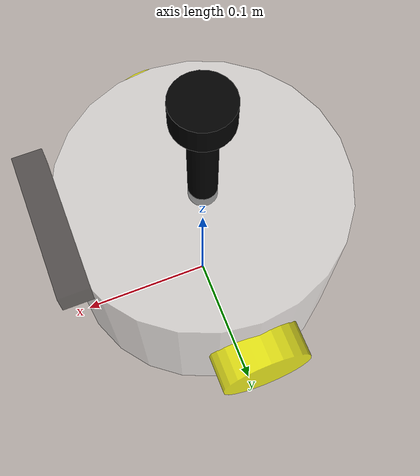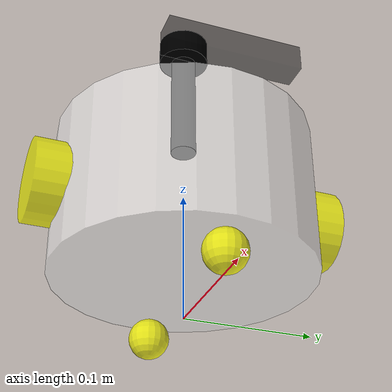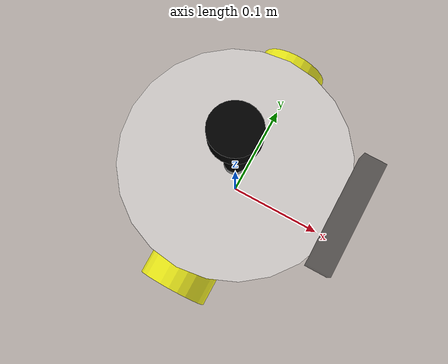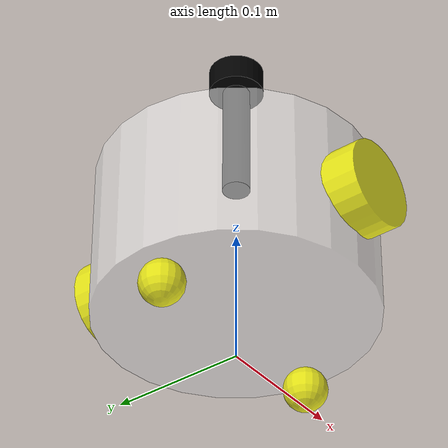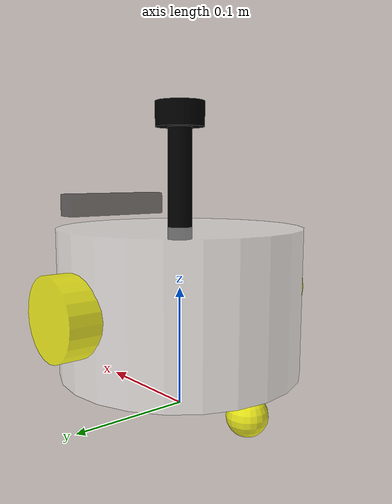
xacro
<?xml version="1.0"?>
<robot xmlns:xacro="http://www.ros.org/wiki/xacro" name="fishbot">
    <!-- base part -->
    <xacro:include filename="$(find fishbot_description)/urdf/fishbot/base.urdf.xacro"/>
    <!-- 传感器部分 -->
    <xacro:include filename="$(find fishbot_description)/urdf/fishbot/sensor/imu.urdf.xacro"/>
    <xacro:include filename="$(find fishbot_description)/urdf/fishbot/sensor/camera.urdf.xacro"/>
    <xacro:include filename="$(find fishbot_description)/urdf/fishbot/sensor/laser.urdf.xacro"/>
    <xacro:include filename="$(find fishbot_description)/urdf/fishbot/actuator/wheel.urdf.xacro"/>
    <xacro:include filename="$(find fishbot_description)/urdf/fishbot/actuator/caster.urdf.xacro"/>
    <xacro:base_xacro length="0.12" radius="0.10"/>
    <xacro:imu_xacro xyz="0.0 0.0 0.02"/>
    <xacro:laser_link xyz="0.0 0.0 0.10"/>
    <xacro:camera_link xyz="0.10 0.0 0.075"/>

    <xacro:wheel_xacro wheel_name="left_wheel" xyz="0.0 0.10 0.0"/>
    <xacro:wheel_xacro wheel_name="right_wheel" xyz="0.0 -0.10 0.0"/>

    <xacro:caster_xacro caster_name="front_caster" xyz="0.08 0.0 -0.076"/>
    <xacro:caster_xacro caster_name="back_caster" xyz="-0.08 0.0 -0.076"/>
</robot>

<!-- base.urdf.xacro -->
<robot xmlns:xacro="http://www.ros.org/wiki/xacro" name="fishbot">

    <!-- 机器人的身体部分 -->
    <xacro:macro name="base_xacro" params="length radius">
        <link name="base_footprint">
            <inertial>
                <mass value="0.01"/>
                <inertia ixx="0.001" ixy="0.0" ixz="0.0" iyy="0.001" iyz="0.0" izz="0.001"/>
            </inertial>
        </link>

        <link name="base_link">
            <inertial>
                <mass value="1.0"/>
                <inertia ixx="0.1" ixy="0.0" ixz="0.0" iyy="0.1" iyz="0.0" izz="0.1"/>
            </inertial>
        <!-- 部件的外观 -->
            <visual>
                <!-- 沿着自己几何中心的偏移和旋转量 -->
                <origin xyz="0.0 0.0 0.0" rpy="0.0 0.0 0.0"/>
                <!-- 几何形状 -->
                <geometry>
                    <!-- 圆柱体 -->
                    <cylinder radius="${radius}" length="${length}"/>
                </geometry>
                <!-- 材质和颜色 -->
                <material name="white">
                    <color rgba="1.0 1.0 1.0 0.5"/>
                </material>
            </visual>
            <collision>
                <!-- 沿着自己几何中心的偏移和旋转量 -->
                <origin xyz="0.0 0.0 0.0" rpy="0.0 0.0 0.0"/>
                <!-- 几何形状 -->
                <geometry>
                    <!-- 圆柱体 -->
                    <cylinder radius="${radius}" length="${length}"/>
                </geometry>
                <!-- 材质和颜色 -->
                <material name="white">
                    <color rgba="1.0 1.0 1.0 0.5"/>
                </material>
            </collision>
        </link>

        <joint name="base_joint" type="fixed">
            <origin xyz="0.0 0.0 ${length/2.0+0.032-0.001}" rpy="0.0 0.0 0.0"/>
            <parent link="base_footprint"/>
            <child link="base_link"/>
        </joint>
    </xacro:macro>

</robot>

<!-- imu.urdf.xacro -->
<robot xmlns:xacro="http://www.ros.org/wiki/xacro" name="first_robot">
    <xacro:macro name="imu_xacro" params="xyz">
        <link name="imu_link">
            <inertial>
                <mass value="0.02"/>
                <inertia ixx="0.001" ixy="0.0" ixz="0.0" iyy="0.001" iyz="0.0" izz="0.001"/>
            </inertial>
            <!-- 部件的外观 -->
            <visual>
                <!-- 沿着自己几何中心的偏移和旋转量 -->
                <origin xyz="0.0 0.0 0.0" rpy="0.0 0.0 0.0"/>
                <!-- 几何形状 -->
                <geometry>
                    <box size="0.02 0.02 0.02"/>
                </geometry>
                <!-- 材质和颜色 -->
                <material name="white">
                    <color rgba="0 0 0 0.5"/>
                </material>
            </visual>
            <collision>
                <origin xyz="0.0 0.0 0.0" rpy="0.0 0.0 0.0"/>
                <geometry>
                    <box size="0.02 0.02 0.02"/>
                </geometry>
            </collision>
        </link>

        <joint name="imu_joint" type="fixed">
            <origin xyz="${xyz}" rpy="0.0 0.0 0.0"/>
            <parent link="base_link"/>
            <child link="imu_link"/>
        </joint>
    </xacro:macro>
</robot>

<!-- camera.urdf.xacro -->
<robot xmlns:xacro="http://www.ros.org/wiki/xacro" name="first_robot">
    <xacro:macro name="camera_link" params="xyz">
        <link name="camera_link">
            <inertial>
                <mass value="0.05"/>
                <inertia ixx="0.001" ixy="0.0" ixz="0.0" iyy="0.001" iyz="0.0" izz="0.001"/>
            </inertial>
            <!-- 部件的外观 -->
            <visual>
                <!-- 沿着自己几何中心的偏移和旋转量 -->
                <origin xyz="0.0 0.0 0.0" rpy="0.0 0.0 0.0"/>
                <!-- 几何形状 -->
                <geometry>
                    <!-- 圆柱体 -->
                    <box size="0.02 0.10 0.02"/>
                </geometry>
                <!-- 材质和颜色 -->
                <material name="black">
                    <color rgba="0 0 0 0.5"/>
                </material>
            </visual>
            <collision>
                <origin xyz="0.0 0.0 0.0" rpy="0.0 0.0 0.0"/>
                <geometry>
                    <!-- 圆柱体 -->
                    <box size="0.02 0.10 0.02"/>
                </geometry>
                <!-- 材质和颜色 -->
                <material name="black">
                    <color rgba="0 0 0 0.5"/>
                    <texture filename=""/>
                </material>
            </collision>
        </link>

        <!-- 机器人关节 用于组合机器人部件 -->
        <joint name="camera_joint" type="fixed">
            <origin xyz="${xyz}" rpy="0.0 0.0 0.0"/>
            <parent link="base_link"/>
            <child link="camera_link"/>
        </joint>
    </xacro:macro>

</robot>

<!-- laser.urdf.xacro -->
<robot xmlns:xacro="http://www.ros.org/wiki/xacro" name="fishbot">
    <xacro:macro name="laser_link" params="xyz">
        <link name="laser_cylinder_link">
            <inertial>
                <mass value="0.05"/>
                <inertia ixx="0.001" ixy="0.0" ixz="0.0" iyy="0.001" iyz="0.0" izz="0.001"/>
            </inertial>
            <visual name="">
                <origin xyz="0.0 0.0 0.0" rpy="0.0 0.0 0.0"/>
                <geometry>
                    <cylinder radius="0.01" length="0.10"/>
                </geometry>
                <material name="black">
                    <color rgba="0 0.0 0.0 1.0"/>
                    <texture filename=""/>
                </material>
            </visual>
            <collision>
                <origin xyz="0.0 0.0 0.0" rpy="0.0 0.0 0.0"/>
                <geometry>
                    <cylinder radius="0.01" length="0.10"/>
                </geometry>
                <material name="black">
                    <color rgba="0 0.0 0.0 1.0"/>
                    <texture filename=""/>
                </material>
            </collision>
        </link>

        <link name="laser_link">
            <inertial>
                <mass value="0.02"/>
                <inertia ixx="0.001" ixy="0.0" ixz="0.0" iyy="0.001" iyz="0.0" izz="0.001"/>
            </inertial>
            <visual name="">
                <origin xyz="0.0 0.0 0.0" rpy="0.0 0.0 0.0"/>
                <geometry>
                    <cylinder radius="0.02" length="0.02"/>
                </geometry>
                <material name="black">
                    <color rgba="0 0.0 0.0 1.0"/>
                    <texture filename=""/>
                </material>
            </visual>
            <collision>
                <origin xyz="0.0 0.0 0.0" rpy="0.0 0.0 0.0"/>
                <geometry>
                    <cylinder radius="0.02" length="0.02"/>
                </geometry>
                <material name="black">
                    <color rgba="0 0.0 0.0 1.0"/>
                    <texture filename=""/>
                </material>
            </collision>
        </link>

        <joint name="laser_joint" type="fixed">
            <origin xyz="0 0 0.05" rpy="0.0 0.0 0.0"/>
            <parent link="laser_cylinder_link"/>
            <child link="laser_link"/>
        </joint>

        <joint name="laser_cylinder_joint" type="fixed">
            <origin xyz="${xyz}" rpy="0.0 0.0 0.0"/>
            <parent link="base_link"/>
            <child link="laser_cylinder_link"/>
        </joint>

        <gazebo reference="laser_cylinder_link">
            <material>Gazebo/Black</material>
        </gazebo>
        <gazebo reference="laser_link">
            <material>Gazebo/Black</material>
        </gazebo>

    </xacro:macro>
</robot>

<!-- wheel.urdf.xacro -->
<robot xmlns:xacro="http://www.ros.org/wiki/xacro" name="first_robot">
    <xacro:macro name="wheel_xacro" params="wheel_name xyz">
        <link name="${wheel_name}_link">
            <inertial>
                <mass value="0.1"/>
                <inertia ixx="0.01" ixy="0.0" ixz="0.0" iyy="0.01" iyz="0.0" izz="0.01"/>
            </inertial>
            <!-- 部件的外观 -->
            <visual>
                <!-- 沿着自己几何中心的偏移和旋转量 -->
                <origin xyz="0.0 0.0 0.0" rpy="1.57079 0.0 0.0"/>
                <!-- 几何形状 -->
                <geometry>
                    <cylinder radius="0.032" length="0.04"/>
                </geometry>
                <!-- 材质和颜色 -->
                <material name="yellow">
                    <color rgba="1.0 1.0 0 0.8"/>
                </material>
            </visual>
            <collision>
                <!-- 沿着自己几何中心的偏移和旋转量 -->
                <origin xyz="0.0 0.0 0.0" rpy="1.57079 0.0 0.0"/>
                <!-- 几何形状 -->
                <geometry>
                    <cylinder radius="0.032" length="0.04"/>
                </geometry>
                <!-- 材质和颜色 -->
                <material name="yellow">
                    <color rgba="1.0 1.0 0 0.8"/>
                </material>
            </collision>
        </link>

        <joint name="${wheel_name}_joint" type="continuous">
            <origin xyz="${xyz}" rpy="0.0 0.0 0.0"/>
            <parent link="base_link"/>
            <child link="${wheel_name}_link"/>
            <axis xyz="0.0 1 0.0"/>
        </joint>
    </xacro:macro>
</robot>

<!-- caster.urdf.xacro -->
<robot xmlns:xacro="http://www.ros.org/wiki/xacro" name="first_robot">
    <xacro:macro name="caster_xacro" params="caster_name xyz">
        <link name="${caster_name}_link">
            <inertial>
                <mass value="0.05"/>
                <inertia ixx="0.001" ixy="0.0" ixz="0.0" iyy="0.001" iyz="0.0" izz="0.001"/>
            </inertial>
            <!-- 部件的外观 -->
            <visual>
                <!-- 沿着自己几何中心的偏移和旋转量 -->
                <origin xyz="0.0 0.0 0.0" rpy="0.0 0.0 0.0"/>
                <!-- 几何形状 -->
                <geometry>
                    <sphere radius="0.016"/>
                </geometry>
                <!-- 材质和颜色 -->
                <material name="yellow">
                    <color rgba="1.0 1.0 0 0.8"/>
                </material>
            </visual>
            <collision>
                <origin xyz="0.0 0.0 0.0" rpy="0.0 0.0 0.0"/>
                <geometry>
                    <sphere radius="0.016"/>
                </geometry>
                <material name="yellow">
                    <color rgba="1.0 1.0 0 0.8"/>
                </material>
            </collision>
        </link>

        <joint name="${caster_name}_joint" type="fixed">
            <origin xyz="${xyz}" rpy="0.0 0.0 0.0"/>
            <parent link="base_link"/>
            <child link="${caster_name}_link"/>
        </joint>
    </xacro:macro>
</robot>
